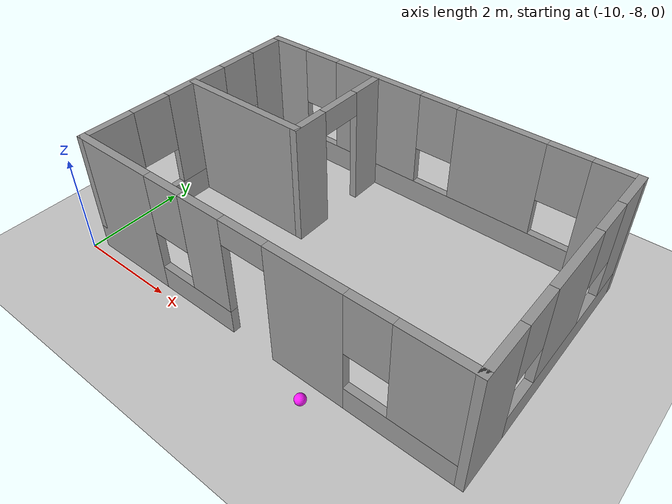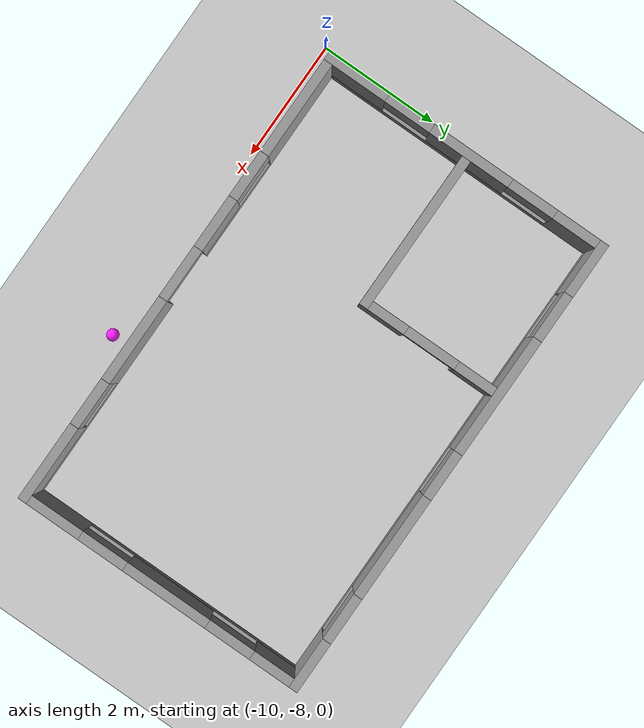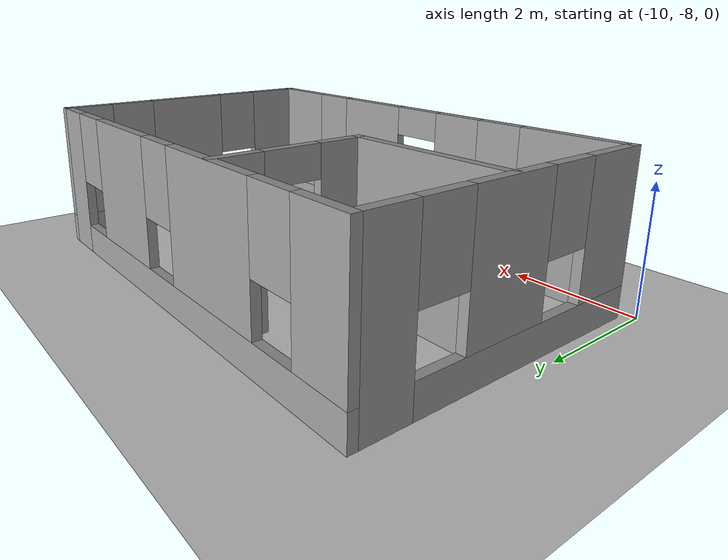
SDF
<sdf version="1.6">
 <world name="default">
  <light name="sun" type="directional">
   <pose>0 0 10 0 -0 0</pose>
   <diffuse>0.8 0.8 0.8 1</diffuse>
   <specular>0.2 0.2 0.2 1</specular>
   <attenuation>
    <range>1000</range>
    <constant>0.9</constant>
    <linear>0.01</linear>
    <quadratic>0.001</quadratic>
   </attenuation>
   <direction>-0.5 0.1 -0.9</direction>
  </light>
  <model name="ground_plane">
   <static>1</static>
   <link name="link">
    <collision name="collision">
     <geometry><plane><normal>0 0 1</normal><size>100 100</size></plane></geometry>
     <surface>
      <contact><collide_bitmask>65535</collide_bitmask></contact>
      <friction><ode><mu>100</mu><mu2>50</mu2></ode></friction>
     </surface>
    </collision>
    <visual name="visual">
     <cast_shadows>0</cast_shadows>
     <geometry><plane><normal>0 0 1</normal><size>100 100</size></plane></geometry>
     <material>
      <script><uri>file://media/materials/scripts/gazebo.material</uri><name>Gazebo/Grey</name></script>
     </material>
    </visual>
   </link>
  </model>
  <gravity>0 0 -9.8</gravity>
  <magnetic_field>6e-06 2.3e-05 -4.2e-05</magnetic_field>
  <atmosphere type="adiabatic"/>
  <physics name="default_physics" default="0" type="ode">
   <max_step_size>0.001</max_step_size>
   <real_time_factor>1</real_time_factor>
   <real_time_update_rate>1000</real_time_update_rate>
  </physics>
  <scene><ambient>0.4 0.4 0.4 1</ambient><background>0.7 0.7 0.7 1</background><shadows>1</shadows></scene>
  <spherical_coordinates>
   <surface_model>EARTH_WGS84</surface_model>
   <latitude_deg>0</latitude_deg>
   <longitude_deg>0</longitude_deg>
   <elevation>0</elevation>
   <heading_deg>0</heading_deg>
  </spherical_coordinates>
  <model name="SimpleHouse">
   <pose>-5.82104 -5.31275 0 0 -0 0</pose>
   <link name="Wall_10">
    <pose>0 2.425 0 0 -0 3.14159</pose>
    <visual name="Wall_10_Visual_0">
     <pose>-3.56603 0 1.25 0 -0 0</pose>
     <geometry><box><size>0.867938 0.15 2.5</size></box></geometry>
     <material>
      <script><uri>file://media/materials/scripts/gazebo.material</uri><name>Gazebo/Grey</name></script>
      <ambient>1 1 1 1</ambient>
     </material>
     <meta><layer>0</layer></meta>
    </visual>
    <collision name="Wall_10_Collision_0">
     <geometry><box><size>0.867938 0.15 2.5</size></box></geometry>
     <pose>-3.56603 0 1.25 0 -0 0</pose>
    </collision>
    <visual name="Wall_10_Visual_1">
     <pose>0.433969 0 0.25 0 -0 0</pose>
     <geometry><box><size>7.13206 0.15 0.5</size></box></geometry>
     <material>
      <script><uri>file://media/materials/scripts/gazebo.material</uri><name>Gazebo/Grey</name></script>
      <ambient>1 1 1 1</ambient>
     </material>
     <meta><layer>0</layer></meta>
    </visual>
    <collision name="Wall_10_Collision_1">
     <geometry><box><size>7.13206 0.15 0.5</size></box></geometry>
     <pose>0.433969 0 0.25 0 -0 0</pose>
    </collision>
    <visual name="Wall_10_Visual_2">
     <pose>-1.44654 0 1.5 0 -0 0</pose>
     <geometry><box><size>1.77104 0.15 2</size></box></geometry>
     <material>
      <script><uri>file://media/materials/scripts/gazebo.material</uri><name>Gazebo/Grey</name></script>
      <ambient>1 1 1 1</ambient>
     </material>
     <meta><layer>0</layer></meta>
    </visual>
    <collision name="Wall_10_Collision_2">
     <geometry><box><size>1.77104 0.15 2</size></box></geometry>
     <pose>-1.44654 0 1.5 0 -0 0</pose>
    </collision>
    <visual name="Wall_10_Visual_3">
     <pose>1.25567 0 1.5 0 -0 0</pose>
     <geometry><box><size>2.03339 0.15 2</size></box></geometry>
     <material>
      <script><uri>file://media/materials/scripts/gazebo.material</uri><name>Gazebo/Grey</name></script>
      <ambient>1 1 1 1</ambient>
     </material>
     <meta><layer>0</layer></meta>
    </visual>
    <collision name="Wall_10_Collision_3">
     <geometry><box><size>2.03339 0.15 2</size></box></geometry>
     <pose>1.25567 0 1.5 0 -0 0</pose>
    </collision>
    <visual name="Wall_10_Visual_4">
     <pose>3.53618 0 1.5 0 -0 0</pose>
     <geometry><box><size>0.927633 0.15 2</size></box></geometry>
     <material>
      <script><uri>file://media/materials/scripts/gazebo.material</uri><name>Gazebo/Grey</name></script>
      <ambient>1 1 1 1</ambient>
     </material>
     <meta><layer>0</layer></meta>
    </visual>
    <collision name="Wall_10_Collision_4">
     <geometry><box><size>0.927633 0.15 2</size></box></geometry>
     <pose>3.53618 0 1.5 0 -0 0</pose>
    </collision>
    <visual name="Wall_10_Visual_5">
     <pose>-2.73206 0 1.9 0 -0 0</pose>
     <geometry><box><size>0.8 0.15 1.2</size></box></geometry>
     <material>
      <script><uri>file://media/materials/scripts/gazebo.material</uri><name>Gazebo/Grey</name></script>
      <ambient>1 1 1 1</ambient>
     </material>
     <meta><layer>0</layer></meta>
    </visual>
    <collision name="Wall_10_Collision_5">
     <geometry><box><size>0.8 0.15 1.2</size></box></geometry>
     <pose>-2.73206 0 1.9 0 -0 0</pose>
    </collision>
    <visual name="Wall_10_Visual_6">
     <pose>-0.161023 0 1.9 0 -0 0</pose>
     <geometry><box><size>0.8 0.15 1.2</size></box></geometry>
     <material>
      <script><uri>file://media/materials/scripts/gazebo.material</uri><name>Gazebo/Grey</name></script>
      <ambient>1 1 1 1</ambient>
     </material>
     <meta><layer>0</layer></meta>
    </visual>
    <collision name="Wall_10_Collision_6">
     <geometry><box><size>0.8 0.15 1.2</size></box></geometry>
     <pose>-0.161023 0 1.9 0 -0 0</pose>
    </collision>
    <visual name="Wall_10_Visual_7">
     <pose>2.67237 0 1.9 0 -0 0</pose>
     <geometry><box><size>0.8 0.15 1.2</size></box></geometry>
     <material>
      <script><uri>file://media/materials/scripts/gazebo.material</uri><name>Gazebo/Grey</name></script>
      <ambient>1 1 1 1</ambient>
     </material>
     <meta><layer>0</layer></meta>
    </visual>
    <collision name="Wall_10_Collision_7">
     <geometry><box><size>0.8 0.15 1.2</size></box></geometry>
     <pose>2.67237 0 1.9 0 -0 0</pose>
    </collision>
   </link>
   <link name="Wall_11">
    <pose>-3.925 0 0 0 0 -1.5708</pose>
    <visual name="Wall_11_Visual_0">
     <pose>-2.0445 0 1.25 0 -0 0</pose>
     <geometry><box><size>0.910996 0.15 2.5</size></box></geometry>
     <material>
      <script><uri>file://media/materials/scripts/gazebo.material</uri><name>Gazebo/Grey</name></script>
      <ambient>1 1 1 1</ambient>
     </material>
     <meta><layer>0</layer></meta>
    </visual>
    <collision name="Wall_11_Collision_0">
     <geometry><box><size>0.910996 0.15 2.5</size></box></geometry>
     <pose>-2.0445 0 1.25 0 -0 0</pose>
    </collision>
    <visual name="Wall_11_Visual_1">
     <pose>0.455498 0 0.25 0 -0 0</pose>
     <geometry><box><size>4.089 0.15 0.5</size></box></geometry>
     <material>
      <script><uri>file://media/materials/scripts/gazebo.material</uri><name>Gazebo/Grey</name></script>
      <ambient>1 1 1 1</ambient>
     </material>
     <meta><layer>0</layer></meta>
    </visual>
    <collision name="Wall_11_Collision_1">
     <geometry><box><size>4.089 0.15 0.5</size></box></geometry>
     <pose>0.455498 0 0.25 0 -0 0</pose>
    </collision>
    <visual name="Wall_11_Visual_2">
     <pose>-0.087131 0 1.5 0 -0 0</pose>
     <geometry><box><size>1.40375 0.15 2</size></box></geometry>
     <material>
      <script><uri>file://media/materials/scripts/gazebo.material</uri><name>Gazebo/Grey</name></script>
      <ambient>1 1 1 1</ambient>
     </material>
     <meta><layer>0</layer></meta>
    </visual>
    <collision name="Wall_11_Collision_2">
     <geometry><box><size>1.40375 0.15 2</size></box></geometry>
     <pose>-0.087131 0 1.5 0 -0 0</pose>
    </collision>
    <visual name="Wall_11_Visual_3">
     <pose>1.95737 0 1.5 0 -0 0</pose>
     <geometry><box><size>1.08526 0.15 2</size></box></geometry>
     <material>
      <script><uri>file://media/materials/scripts/gazebo.material</uri><name>Gazebo/Grey</name></script>
      <ambient>1 1 1 1</ambient>
     </material>
     <meta><layer>0</layer></meta>
    </visual>
    <collision name="Wall_11_Collision_3">
     <geometry><box><size>1.08526 0.15 2</size></box></geometry>
     <pose>1.95737 0 1.5 0 -0 0</pose>
    </collision>
    <visual name="Wall_11_Visual_4">
     <pose>-1.189 0 1.9 0 -0 0</pose>
     <geometry><box><size>0.8 0.15 1.2</size></box></geometry>
     <material>
      <script><uri>file://media/materials/scripts/gazebo.material</uri><name>Gazebo/Grey</name></script>
      <ambient>1 1 1 1</ambient>
     </material>
     <meta><layer>0</layer></meta>
    </visual>
    <collision name="Wall_11_Collision_4">
     <geometry><box><size>0.8 0.15 1.2</size></box></geometry>
     <pose>-1.189 0 1.9 0 -0 0</pose>
    </collision>
    <visual name="Wall_11_Visual_5">
     <pose>1.01474 0 1.9 0 -0 0</pose>
     <geometry><box><size>0.8 0.15 1.2</size></box></geometry>
     <material>
      <script><uri>file://media/materials/scripts/gazebo.material</uri><name>Gazebo/Grey</name></script>
      <ambient>1 1 1 1</ambient>
     </material>
     <meta><layer>0</layer></meta>
    </visual>
    <collision name="Wall_11_Collision_5">
     <geometry><box><size>0.8 0.15 1.2</size></box></geometry>
     <pose>1.01474 0 1.9 0 -0 0</pose>
    </collision>
   </link>
   <link name="Wall_13">
    <collision name="Wall_13_Collision">
     <geometry><box><size>2.75 0.15 2.5</size></box></geometry>
     <pose>0 0 1.25 0 -0 0</pose>
    </collision>
    <visual name="Wall_13_Visual">
     <pose>0 0 1.25 0 -0 0</pose>
     <geometry><box><size>2.75 0.15 2.5</size></box></geometry>
     <material>
      <script><uri>file://media/materials/scripts/gazebo.material</uri><name>Gazebo/Grey</name></script>
      <ambient>1 1 1 1</ambient>
     </material>
     <meta><layer>0</layer></meta>
    </visual>
    <pose>-2.57918 0.052151 0 0 -0 0</pose>
   </link>
   <link name="Wall_14">
    <pose>-1.27918 1.22715 0 0 -0 1.5708</pose>
    <visual name="Wall_14_Visual_0">
     <pose>-0.851583 0 1.25 0 -0 0</pose>
     <geometry><box><size>0.796834 0.15 2.5</size></box></geometry>
     <material>
      <script><uri>file://media/materials/scripts/gazebo.material</uri><name>Gazebo/Grey</name></script>
      <ambient>1 1 1 1</ambient>
     </material>
     <meta><layer>0</layer></meta>
    </visual>
    <collision name="Wall_14_Collision_0">
     <geometry><box><size>0.796834 0.15 2.5</size></box></geometry>
     <pose>-0.851583 0 1.25 0 -0 0</pose>
    </collision>
    <visual name="Wall_14_Visual_1">
     <pose>0.848417 0 1.25 0 -0 0</pose>
     <geometry><box><size>0.803166 0.15 2.5</size></box></geometry>
     <material>
      <script><uri>file://media/materials/scripts/gazebo.material</uri><name>Gazebo/Grey</name></script>
      <ambient>1 1 1 1</ambient>
     </material>
     <meta><layer>0</layer></meta>
    </visual>
    <collision name="Wall_14_Collision_1">
     <geometry><box><size>0.803166 0.15 2.5</size></box></geometry>
     <pose>0.848417 0 1.25 0 -0 0</pose>
    </collision>
    <visual name="Wall_14_Visual_2">
     <pose>-0.003166 0 2.25 0 -0 0</pose>
     <geometry><box><size>0.9 0.15 0.5</size></box></geometry>
     <material>
      <script><uri>file://media/materials/scripts/gazebo.material</uri><name>Gazebo/Grey</name></script>
      <ambient>1 1 1 1</ambient>
     </material>
     <meta><layer>0</layer></meta>
    </visual>
    <collision name="Wall_14_Collision_2">
     <geometry><box><size>0.9 0.15 0.5</size></box></geometry>
     <pose>-0.003166 0 2.25 0 -0 0</pose>
    </collision>
   </link>
   <link name="Wall_8">
    <pose>0 -2.425 0 0 -0 0</pose>
    <visual name="Wall_8_Visual_0">
     <pose>-3.10768 0 1.25 0 -0 0</pose>
     <geometry><box><size>1.78465 0.15 2.5</size></box></geometry>
     <material>
      <script><uri>file://media/materials/scripts/gazebo.material</uri><name>Gazebo/Grey</name></script>
      <ambient>1 1 1 1</ambient>
     </material>
     <meta><layer>0</layer></meta>
    </visual>
    <collision name="Wall_8_Collision_0">
     <geometry><box><size>1.78465 0.15 2.5</size></box></geometry>
     <pose>-3.10768 0 1.25 0 -0 0</pose>
    </collision>
    <visual name="Wall_8_Visual_1">
     <pose>1.12174 0 1.25 0 -0 0</pose>
     <geometry><box><size>1.47618 0.15 2.5</size></box></geometry>
     <material>
      <script><uri>file://media/materials/scripts/gazebo.material</uri><name>Gazebo/Grey</name></script>
      <ambient>1 1 1 1</ambient>
     </material>
     <meta><layer>0</layer></meta>
    </visual>
    <collision name="Wall_8_Collision_1">
     <geometry><box><size>1.47618 0.15 2.5</size></box></geometry>
     <pose>1.12174 0 1.25 0 -0 0</pose>
    </collision>
    <visual name="Wall_8_Visual_2">
     <pose>-1.36585 0 0.25 0 -0 0</pose>
     <geometry><box><size>1.69901 0.15 0.5</size></box></geometry>
     <material>
      <script><uri>file://media/materials/scripts/gazebo.material</uri><name>Gazebo/Grey</name></script>
      <ambient>1 1 1 1</ambient>
     </material>
     <meta><layer>0</layer></meta>
    </visual>
    <collision name="Wall_8_Collision_2">
     <geometry><box><size>1.69901 0.15 0.5</size></box></geometry>
     <pose>-1.36585 0 0.25 0 -0 0</pose>
    </collision>
    <visual name="Wall_8_Visual_3">
     <pose>2.92991 0 0.25 0 -0 0</pose>
     <geometry><box><size>2.14017 0.15 0.5</size></box></geometry>
     <material>
      <script><uri>file://media/materials/scripts/gazebo.material</uri><name>Gazebo/Grey</name></script>
      <ambient>1 1 1 1</ambient>
     </material>
     <meta><layer>0</layer></meta>
    </visual>
    <collision name="Wall_8_Collision_3">
     <geometry><box><size>2.14017 0.15 0.5</size></box></geometry>
     <pose>2.92991 0 0.25 0 -0 0</pose>
    </collision>
    <visual name="Wall_8_Visual_4">
     <pose>-0.965851 0 1.5 0 -0 0</pose>
     <geometry><box><size>0.899006 0.15 2</size></box></geometry>
     <material>
      <script><uri>file://media/materials/scripts/gazebo.material</uri><name>Gazebo/Grey</name></script>
      <ambient>1 1 1 1</ambient>
     </material>
     <meta><layer>0</layer></meta>
    </visual>
    <collision name="Wall_8_Collision_4">
     <geometry><box><size>0.899006 0.15 2</size></box></geometry>
     <pose>-0.965851 0 1.5 0 -0 0</pose>
    </collision>
    <visual name="Wall_8_Visual_5">
     <pose>-0.965851 0 1.5 0 -0 0</pose>
     <geometry><box><size>0.899006 0.15 2</size></box></geometry>
     <material>
      <script><uri>file://media/materials/scripts/gazebo.material</uri><name>Gazebo/Grey</name></script>
      <ambient>1 1 1 1</ambient>
     </material>
     <meta><layer>0</layer></meta>
    </visual>
    <collision name="Wall_8_Collision_5">
     <geometry><box><size>0.899006 0.15 2</size></box></geometry>
     <pose>-0.965851 0 1.5 0 -0 0</pose>
    </collision>
    <visual name="Wall_8_Visual_6">
     <pose>3.32992 0 1.5 0 -0 0</pose>
     <geometry><box><size>1.34017 0.15 2</size></box></geometry>
     <material>
      <script><uri>file://media/materials/scripts/gazebo.material</uri><name>Gazebo/Grey</name></script>
      <ambient>1 1 1 1</ambient>
     </material>
     <meta><layer>0</layer></meta>
    </visual>
    <collision name="Wall_8_Collision_6">
     <geometry><box><size>1.34017 0.15 2</size></box></geometry>
     <pose>3.32992 0 1.5 0 -0 0</pose>
    </collision>
    <visual name="Wall_8_Visual_7">
     <pose>-1.81535 0 1.9 0 -0 0</pose>
     <geometry><box><size>0.8 0.15 1.2</size></box></geometry>
     <material>
      <script><uri>file://media/materials/scripts/gazebo.material</uri><name>Gazebo/Grey</name></script>
      <ambient>1 1 1 1</ambient>
     </material>
     <meta><layer>0</layer></meta>
    </visual>
    <collision name="Wall_8_Collision_7">
     <geometry><box><size>0.8 0.15 1.2</size></box></geometry>
     <pose>-1.81535 0 1.9 0 -0 0</pose>
    </collision>
    <visual name="Wall_8_Visual_8">
     <pose>2.25983 0 1.9 0 -0 0</pose>
     <geometry><box><size>0.8 0.15 1.2</size></box></geometry>
     <material>
      <script><uri>file://media/materials/scripts/gazebo.material</uri><name>Gazebo/Grey</name></script>
      <ambient>1 1 1 1</ambient>
     </material>
     <meta><layer>0</layer></meta>
    </visual>
    <collision name="Wall_8_Collision_8">
     <geometry><box><size>0.8 0.15 1.2</size></box></geometry>
     <pose>2.25983 0 1.9 0 -0 0</pose>
    </collision>
    <visual name="Wall_8_Visual_9">
     <pose>-0.066348 0 2.25 0 -0 0</pose>
     <geometry><box><size>0.9 0.15 0.5</size></box></geometry>
     <material>
      <script><uri>file://media/materials/scripts/gazebo.material</uri><name>Gazebo/Grey</name></script>
      <ambient>1 1 1 1</ambient>
     </material>
     <meta><layer>0</layer></meta>
    </visual>
    <collision name="Wall_8_Collision_9">
     <geometry><box><size>0.9 0.15 0.5</size></box></geometry>
     <pose>-0.066348 0 2.25 0 -0 0</pose>
    </collision>
    <visual name="Wall_8_Visual_10">
     <pose>-0.066348 0 2.25 0 -0 0</pose>
     <geometry><box><size>0.9 0.15 0.5</size></box></geometry>
     <material>
      <script><uri>file://media/materials/scripts/gazebo.material</uri><name>Gazebo/Grey</name></script>
      <ambient>1 1 1 1</ambient>
     </material>
     <meta><layer>0</layer></meta>
    </visual>
    <collision name="Wall_8_Collision_10">
     <geometry><box><size>0.9 0.15 0.5</size></box></geometry>
     <pose>-0.066348 0 2.25 0 -0 0</pose>
    </collision>
   </link>
   <link name="Wall_9">
    <pose>3.925 0 0 0 -0 1.5708</pose>
    <visual name="Wall_9_Visual_0">
     <pose>-1.96612 0 1.25 0 -0 0</pose>
     <geometry><box><size>1.06777 0.15 2.5</size></box></geometry>
     <material>
      <script><uri>file://media/materials/scripts/gazebo.material</uri><name>Gazebo/Grey</name></script>
      <ambient>1 1 1 1</ambient>
     </material>
     <meta><layer>0</layer></meta>
    </visual>
    <collision name="Wall_9_Collision_0">
     <geometry><box><size>1.06777 0.15 2.5</size></box></geometry>
     <pose>-1.96612 0 1.25 0 -0 0</pose>
    </collision>
    <visual name="Wall_9_Visual_1">
     <pose>0.533883 0 0.25 0 -0 0</pose>
     <geometry><box><size>3.93223 0.15 0.5</size></box></geometry>
     <material>
      <script><uri>file://media/materials/scripts/gazebo.material</uri><name>Gazebo/Grey</name></script>
      <ambient>1 1 1 1</ambient>
     </material>
     <meta><layer>0</layer></meta>
    </visual>
    <collision name="Wall_9_Collision_1">
     <geometry><box><size>3.93223 0.15 0.5</size></box></geometry>
     <pose>0.533883 0 0.25 0 -0 0</pose>
    </collision>
    <visual name="Wall_9_Visual_2">
     <pose>0.104621 0 1.5 0 -0 0</pose>
     <geometry><box><size>1.47371 0.15 2</size></box></geometry>
     <material>
      <script><uri>file://media/materials/scripts/gazebo.material</uri><name>Gazebo/Grey</name></script>
      <ambient>1 1 1 1</ambient>
     </material>
     <meta><layer>0</layer></meta>
    </visual>
    <collision name="Wall_9_Collision_2">
     <geometry><box><size>1.47371 0.15 2</size></box></geometry>
     <pose>0.104621 0 1.5 0 -0 0</pose>
    </collision>
    <visual name="Wall_9_Visual_3">
     <pose>2.07074 0 1.5 0 -0 0</pose>
     <geometry><box><size>0.858525 0.15 2</size></box></geometry>
     <material>
      <script><uri>file://media/materials/scripts/gazebo.material</uri><name>Gazebo/Grey</name></script>
      <ambient>1 1 1 1</ambient>
     </material>
     <meta><layer>0</layer></meta>
    </visual>
    <collision name="Wall_9_Collision_3">
     <geometry><box><size>0.858525 0.15 2</size></box></geometry>
     <pose>2.07074 0 1.5 0 -0 0</pose>
    </collision>
    <visual name="Wall_9_Visual_4">
     <pose>-1.03223 0 1.9 0 -0 0</pose>
     <geometry><box><size>0.8 0.15 1.2</size></box></geometry>
     <material>
      <script><uri>file://media/materials/scripts/gazebo.material</uri><name>Gazebo/Grey</name></script>
      <ambient>1 1 1 1</ambient>
     </material>
     <meta><layer>0</layer></meta>
    </visual>
    <collision name="Wall_9_Collision_4">
     <geometry><box><size>0.8 0.15 1.2</size></box></geometry>
     <pose>-1.03223 0 1.9 0 -0 0</pose>
    </collision>
    <visual name="Wall_9_Visual_5">
     <pose>1.24148 0 1.9 0 -0 0</pose>
     <geometry><box><size>0.8 0.15 1.2</size></box></geometry>
     <material>
      <script><uri>file://media/materials/scripts/gazebo.material</uri><name>Gazebo/Grey</name></script>
      <ambient>1 1 1 1</ambient>
     </material>
     <meta><layer>0</layer></meta>
    </visual>
    <collision name="Wall_9_Collision_5">
     <geometry><box><size>0.8 0.15 1.2</size></box></geometry>
     <pose>1.24148 0 1.9 0 -0 0</pose>
    </collision>
   </link>
   <static>1</static>
  </model>
  <model name="my_ball">
   <link name="link_0">
    <inertial>
     <mass>1</mass>
     <inertia><ixx>0.1</ixx><ixy>0</ixy><ixz>0</ixz><iyy>0.1</iyy><iyz>0</iyz><izz>0.1</izz></inertia>
    </inertial>
    <visual name="visual">
     <geometry><sphere><radius>0.1</radius></sphere></geometry>
     <material>
      <lighting>1</lighting>
      <script><uri>file://media/materials/scripts/gazebo.material</uri><name>Gazebo/Grey</name></script>
      <shader type="pixel"><normal_map>__default__</normal_map></shader>
      <ambient>1 1 1 1</ambient>
      <diffuse>1 0.1 1 1</diffuse>
      <specular>1 1 1 1</specular>
      <emissive>1 1 1 1</emissive>
     </material>
    </visual>
    <collision name="collision">
     <geometry><sphere><radius>0.1</radius></sphere></geometry>
     <surface>
      <friction>
       <ode><mu>1</mu><mu2>1</mu2><fdir1>0 0 0</fdir1><slip1>0</slip1><slip2>0</slip2></ode>
       <torsional>
        <coefficient>1</coefficient>
        <patch_radius>0</patch_radius>
        <surface_radius>0</surface_radius>
        <use_patch_radius>1</use_patch_radius>
        <ode><slip>0</slip></ode>
       </torsional>
      </friction>
      <bounce><restitution_coefficient>0</restitution_coefficient><threshold>1e+06</threshold></bounce>
      <contact>
       <collide_without_contact>0</collide_without_contact>
       <collide_without_contact_bitmask>1</collide_without_contact_bitmask>
       <collide_bitmask>1</collide_bitmask>
       <ode>
        <soft_cfm>0</soft_cfm>
        <soft_erp>0.2</soft_erp>
        <kp>1e+13</kp>
        <kd>1</kd>
        <max_vel>0.01</max_vel>
        <min_depth>0</min_depth>
       </ode>
       <bullet>
        <split_impulse>1</split_impulse>
        <split_impulse_penetration_threshold>-0.01</split_impulse_penetration_threshold>
        <soft_cfm>0</soft_cfm>
        <soft_erp>0.2</soft_erp>
        <kp>1e+13</kp>
        <kd>1</kd>
       </bullet>
      </contact>
     </surface>
    </collision>
   </link>
   <static>0</static>
   <pose>-4.52227 -8.15396 0.1 0 -0 0</pose>
  </model>
 </world>
</sdf>
